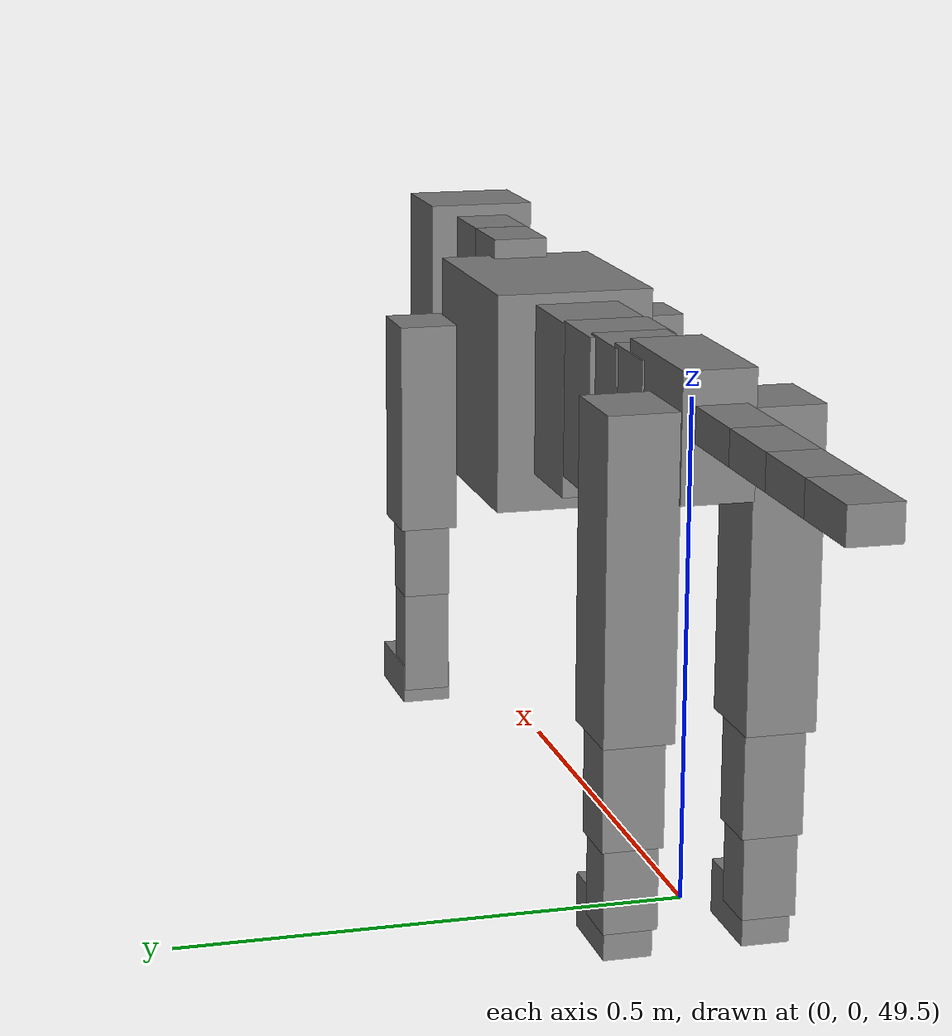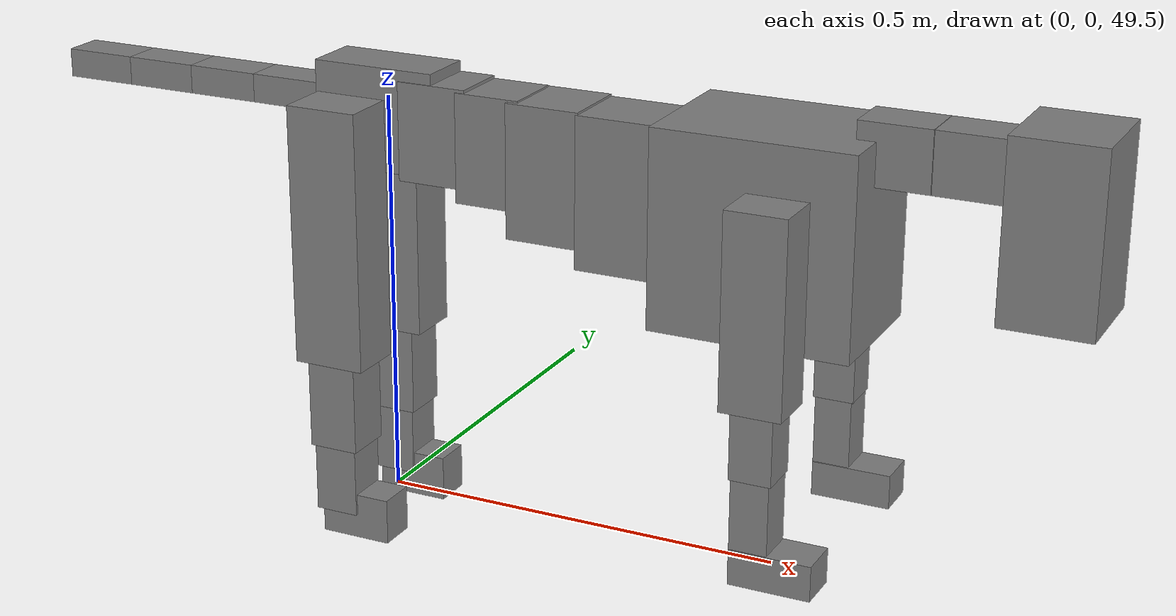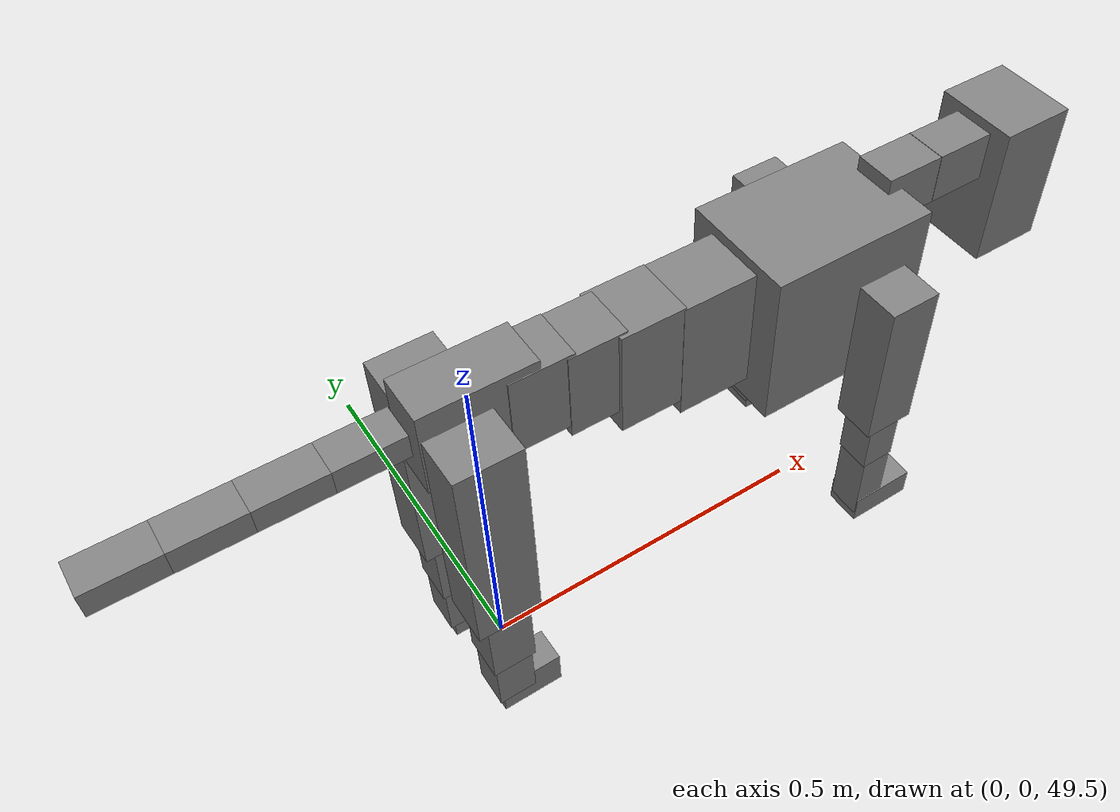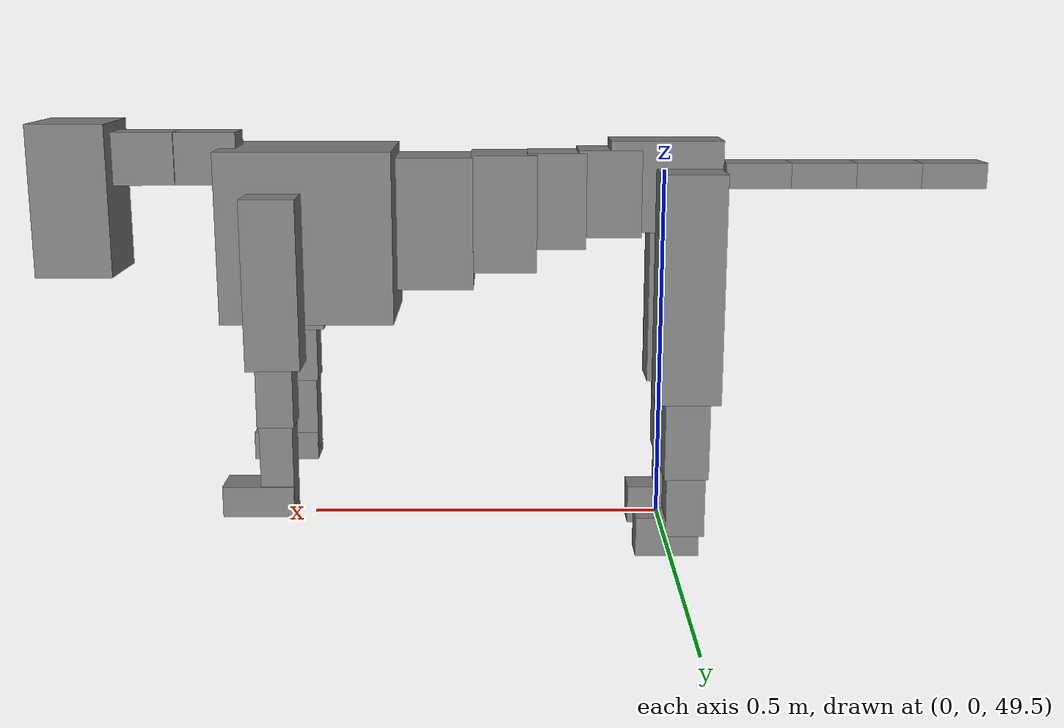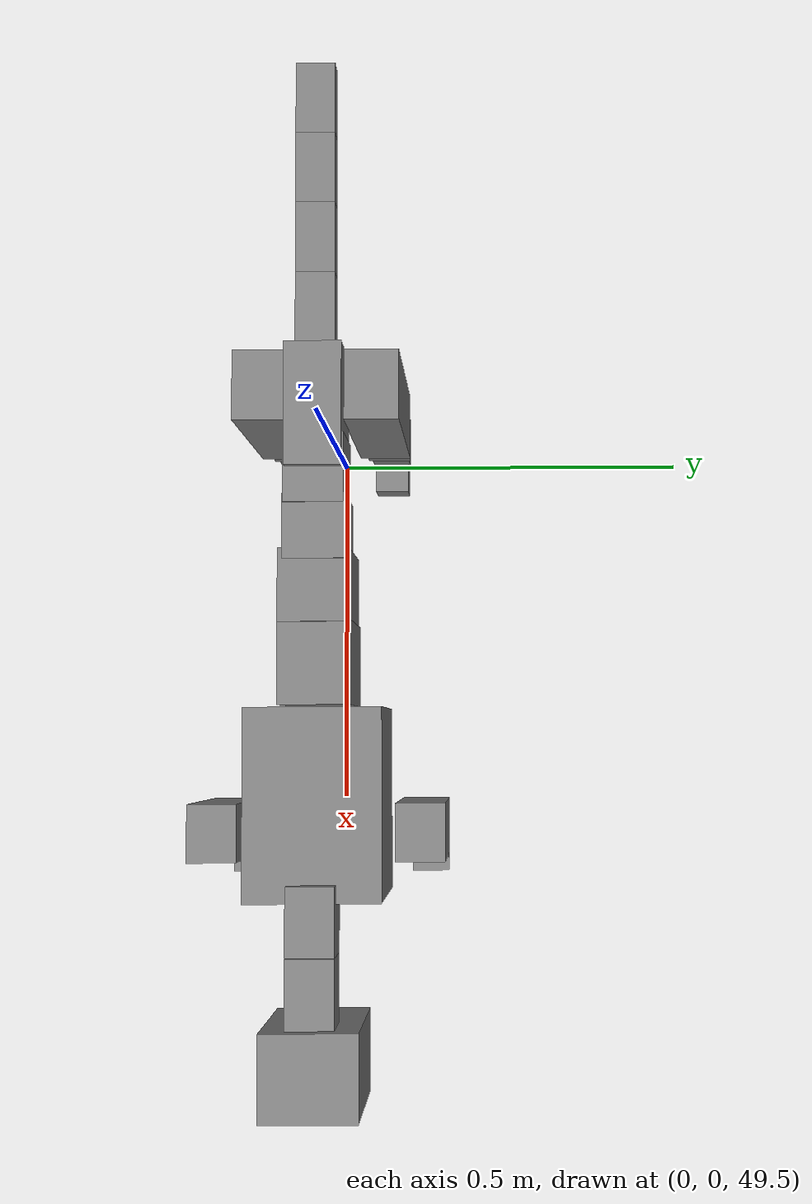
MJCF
<mujoco model="dog">

    <default>
        <joint armature="0.02" stiffness="1" damping="0.2" limited="true"/>
        <geom condim="3" friction="1 0.05 0.05" margin="0.01"/>
        <motor ctrllimited="true" ctrlrange="-1.0 1.0" forcelimited="true" gear="50"/>
    </default>

    <compiler inertiafromgeom="true" angle="radian"/>

    <option timestep="0.016" iterations="50" tolerance="1e-10" solver="Newton" jacobian="dense" cone="pyramidal"/>

    <size nconmax="20000" njmax="60000" nstack="5000000"/>
    <visual>
        <map force="0.1" zfar="30"/>
        <rgba haze="0.15 0.25 0.35 1"/>
        <quality shadowsize="2048"/>
        <global offwidth="800" offheight="800"/>
    </visual>

    <asset>
        <texture type="skybox" builtin="gradient" rgb1="0.3 0.5 0.7" rgb2="0 0 0" width="512" height="512"/>
        <texture name="texplane" type="2d" builtin="checker" rgb1=".2 .3 .4" rgb2=".1 0.15 0.2" width="512" height="512"
                 mark="cross" markrgb=".8 .8 .8"/>
        <texture name="texgeom" type="cube" builtin="flat" mark="cross" width="127" height="1278" rgb1="0.8 0.6 0.4"
                 rgb2="0.8 0.6 0.4" markrgb="1 1 1" random="0.01"/>

        <material name="matplane" reflectance="0.3" texture="texplane" texrepeat="1 1" texuniform="true"/>
        <material name="matgeom" texture="texgeom" texuniform="true" rgba="0.8 0.6 .4 1"/>
    </asset>

    <worldbody>
        <geom name="floor" pos="0 0 0" size="0 0 .25" type="plane" material="matplane" condim="3"/>

        <light directional="false" diffuse=".2 .2 .2" specular="0 0 0" pos="0 0 5" dir="0 0 -1" castshadow="false"/>
        <light mode="targetbodycom" target="torso" directional="false" diffuse=".8 .8 .8" specular="0.3 0.3 0.3"
               pos="0 0 4.0" dir="0 0 -1"/>

        <body name="root" pos="0 0 50">
            <freejoint name="root_1"/>
            <geom type="box" pos="0 0 -0.02" size="0.0774  0.0358  0.063" density="2030"/>

            <body name="spine1" pos="0.054 0 0">
                <joint name="spine1_y" axis="0 1 0" range="0 0.7" limited="true"/>
                <geom type="box" pos="0.02375 0 -0.03" size="0.04375  0.0375  0.05985" density="2030"/>

                <body name="spine2" pos="0.0612 0 0">
                    <joint name="spine2_y" axis="0 1 0" range="-0.15 0.15" limited="true"/>
                    <geom type="box" pos="0.03555  0  -0.04" size="0.04055  0.039  0.06615" density="2030"/>

                    <body name="spine3" pos="0.0730 0 0">
                        <joint name="spine3_y" axis="0 1 0" range="-0.15 0.15" limited="true"/>
                        <geom type="box" pos="0.03555  0  -0.057" size="0.04555  0.0445  0.081" density="2030"/>

                        <body name="spine4" pos="0.0780 0 0">
                            <joint name="spine4_y" axis="0 1 0" range="-0.15 0.15" limited="true"/>
                            <geom type="box" pos="0.05265  0  -0.07" size="0.05265  0.045  0.09135" density="2030"/>

                            <body name="torso" pos="0.1082 0 0">
                                <joint name="torso_y" axis="0 1 0" range="-0.15 0.15" limited="true"/>
                                <geom type="box" pos="0.11925  0  -0.085" size="0.11925  0.085  0.11745"
                                      density="2030"/>

                                <body name="neck1" pos="0.2160  0   0.0180">
                                    <joint name="neck1_y" axis="0 1 0" range="-1.2  -1" limited="true"/>
                                    <geom type="box" pos="0.0423  0  0" size="0.0423  0.03  0.036" density="2325"/>

                                    <body name="neck2" pos="0.0853  0  0">
                                        <joint name="neck2_y" axis="0 1 0" range="0.1  0" limited="true"/>
                                        <geom type="box" pos="0.0423  0  0" size="0.0423  0.03  0.036" density="2325"/>

                                        <body name="head" pos="0.0853  0  0">
                                            <joint name="head_y" axis="0 1 0" range="-0.3  -0.2" limited="true"/>
                                            <geom type="box" pos="0.0531  0  -0.055" size="0.0531  0.06  0.1044"
                                                  density="4030"/>

                                        </body>
                                    </body>
                                </body>

                                <body name="front_shoulder" pos="0.156  0   -0.0480">
                                    <joint name="front_shoulder_y" axis="0 1 0" range="-1 1.5" limited="true"/>
                                    <geom type="box" pos="0 0.13 -0.0873" size="0.0364  0.0311  0.1139" density="1158"/>
                                    <geom type="box" pos="0 -0.13 -0.0873" size="0.0364  0.0311  0.1139"
                                          density="1158"/>

                                    <body name="front_elbow" pos="0  0  -0.1745">
                                        <joint name="front_elbow_y" axis="0 1 0" range="-2 0" limited="true"/>
                                        <geom type="box" pos="0 0.13 -0.0531" size="0.0247  0.0252  0.0531"
                                              density="1081"/>
                                        <geom type="box" pos="0 -0.13 -0.0531" size="0.0247  0.0252  0.0531"
                                              density="1081"/>

                                        <body name="front_wrist" pos="0  0  -0.1062">
                                            <joint name="front_wrist_y" axis="0 1 0" range="-0.2 0" limited="true"/>
                                            <geom type="box" pos="0 0.13 -0.0487" size="0.0223  0.0247  0.0619"
                                                  density="1664"/>
                                            <geom type="box" pos="0 -0.13 -0.0487" size="0.0223  0.0247  0.0619"
                                                  density="1664"/>

                                            <body name="front_finger_end" pos="0  0  -0.0975">
                                                <joint name="front_finger_y" axis="0 1 0" range="-0.4 1"
                                                       limited="true"/>
                                                <geom type="box" pos="0.0263  0.13  -0.0060"
                                                      size="0.0482  0.0263  0.0210" density="1515"/>
                                                <geom type="box" pos="0.0263  -0.13  -0.0060"
                                                      size="0.0482  0.0263  0.0210" density="1515"/>

                                            </body>

                                        </body>
                                    </body>
                                </body>

                            </body>
                        </body>
                    </body>
                </body>
            </body>

            <body name="back_hip" pos="-0.03 0 -0.018">
                <joint name="back_hip_y" axis="0 1 0" range="-1.5 0.3" limited="true"/>
                <geom type="box" pos="0 0.07 -0.1359" size="0.0447  0.0350  0.1587" density="1154"/>
                <geom type="box" pos="0 -0.07 -0.1359" size="0.0447  0.0350  0.1587" density="1154"/>

                <body name="back_knee" pos="0  0  -0.2718">
                    <joint name="back_knee_y" axis="0 1 0" range="0 2.8" limited="true"/>
                    <geom type="box" pos="0 0.07 -0.0578" size="0.0309  0.0305  0.0734" density="1227"/>
                    <geom type="box" pos="0 -0.07 -0.0578" size="0.0309  0.0305  0.0734" density="1227"/>

                    <body name="back_ankle" pos="0  0  -0.1156">
                        <joint name="back_ankle_y" axis="0 1 0" range="-2.2 0" limited="true"/>
                        <geom type="box" pos="0 0.07 -0.0444" size="0.0272  0.0272  0.0557" density="1284"/>
                        <geom type="box" pos="0 -0.07 -0.0444" size="0.0272  0.0272  0.0557" density="1284"/>

                        <body name="back_toe_end" pos="0  0  -0.0889">
                            <joint name="back_toe_y" axis="0 1 0" range="-0.4 1" limited="true"/>
                            <geom type="box" pos="0.0242  0.07  -0.0130" size="0.0445  0.0242  0.0280" density="1515"/>
                            <geom type="box" pos="0.0242  -0.07  -0.0130" size="0.0445  0.0242  0.0280" density="1515"/>

                        </body>
                    </body>
                </body>
            </body>

            <body name="tail1" pos="-0.074 0 -0.006">
                <joint name="tail1_y" axis="0 1 0" range="-0.2 0.2" limited="true"/>
                <geom type="box" pos="-0.0536  0  0" size="0.045  0.025  0.0175" density="1587"/>

                <body name="tail2" pos="-0.09 0 0">
                    <joint name="tail2_y" axis="0 1 0" range="-0.2 0.2" limited="true"/>
                    <geom type="box" pos="-0.0536  0  0" size="0.045  0.025  0.0175" density="1587"/>

                    <body name="tail3" pos="-0.09 0 0">
                        <joint name="tail3_y" axis="0 1 0" range="-0.2 0.2" limited="true"/>
                        <geom type="box" pos="-0.0536  0  0" size="0.045  0.025  0.0175" density="1587"/>

                        <body name="tail4" pos="-0.09 0 0">
                            <joint name="tail4_y" axis="0 1 0" range="-0.2 0.2" limited="true"/>
                            <geom type="box" pos="-0.0536  0  0" size="0.045  0.025  0.0175" density="1587"/>

                        </body>
                    </body>
                </body>
            </body>
        </body>
    </worldbody>

    <actuator>
        <motor joint="spine1_y" forcerange="-150 150     "/>
        <motor joint="spine2_y" forcerange="-150 150     "/>
        <motor joint="spine3_y" forcerange="-150 150     "/>
        <motor joint="spine4_y" forcerange="-150 150     "/>
        <motor joint="torso_y" forcerange="-150 150     "/>
        <motor joint="neck1_y" forcerange="-100 100       "/>
        <motor joint="neck2_y" forcerange="-100 100       "/>
        <motor joint="head_y" forcerange="-150 150       "/>
        <motor joint="front_shoulder_y" forcerange="-108.51 198.86"/>
        <motor joint="front_elbow_y" forcerange="-144.90 138.63"/>
        <motor joint="front_wrist_y" forcerange="-57.08 140.88"/>
        <motor joint="front_finger_y" forcerange="-25.08 75.03"/>
        <motor joint="back_hip_y" forcerange="-301.28 365.81"/>
        <motor joint="back_knee_y" forcerange="-263.93 379.12"/>
        <motor joint="back_angle_y" forcerange="-123.52 212.15"/>
        <motor joint="back_toe_y" forcerange="-71.92 42.08"/>
        <motor joint="tail1_y" forcerange="-50 50     "/>
        <motor joint="tail2_y" forcerange="-50 50     "/>
        <motor joint="tail3_y" forcerange="-50 50     "/>
        <motor joint="tail4_y" forcerange="-50 50     "/>
    </actuator>
</mujoco>
